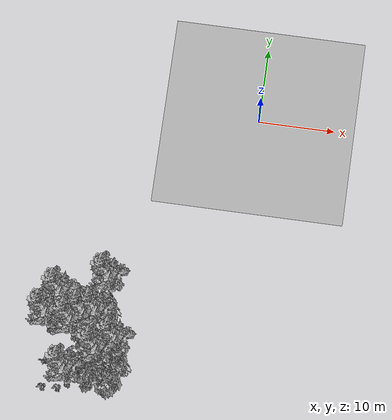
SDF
<sdf version="1.7">
 <world name="default">
  <model name="ground_plane">
   <static>1</static>
   <link name="link">
    <collision name="collision">
     <pose>-50 0 0 0 -0 0</pose>
     <geometry><plane><normal>0 0 1</normal><size>80 80</size></plane></geometry>
     <surface><contact><ode><min_depth>0.01</min_depth><max_vel>0</max_vel></ode></contact></surface>
    </collision>
    <visual name="grass">
     <cast_shadows>0</cast_shadows>
     <geometry>
      <mesh>
       <scale>0.46714285714285714 0.46714285714285714 0.1</scale>
       <uri>file://grass_plane/meshes/grass_plane.dae</uri>
      </mesh>
     </geometry>
    </visual>
   </link>
  </model>
  <model name="Tree 72">
   <static>1</static>
   <pose>-15.256766040645942 -37.49402422030816 0 1.57079 -0 0</pose>
   <link name="link">
    <collision name="collision">
     <geometry><mesh><scale>3.5 5 3.5</scale><uri>model://tree_2/meshes/tree_2.obj</uri></mesh></geometry>
    </collision>
    <visual name="visual">
     <geometry><mesh><scale>3.5 5 3.5</scale><uri>model://tree_2/meshes/tree_2.obj</uri></mesh></geometry>
    </visual>
   </link>
  </model>
  <model name="Tree 113">
   <static>1</static>
   <pose>-18.47589404758458 -31.145371653543627 0 1.57079 -0 0</pose>
   <link name="link">
    <collision name="collision">
     <geometry><mesh><scale>3.5 5 3.5</scale><uri>model://tree_9/meshes/tree_9.obj</uri></mesh></geometry>
    </collision>
    <visual name="visual">
     <geometry><mesh><scale>3.5 5 3.5</scale><uri>model://tree_9/meshes/tree_9.obj</uri></mesh></geometry>
    </visual>
   </link>
  </model>
  <model name="Tree 189">
   <static>1</static>
   <pose>-16.052205030088007 -35.75439649381331 0 1.57079 -0 0</pose>
   <link name="link">
    <collision name="collision">
     <geometry><mesh><scale>3.5 5 3.5</scale><uri>model://tree_2/meshes/tree_2.obj</uri></mesh></geometry>
    </collision>
    <visual name="visual">
     <geometry><mesh><scale>3.5 5 3.5</scale><uri>model://tree_2/meshes/tree_2.obj</uri></mesh></geometry>
    </visual>
   </link>
  </model>
  <model name="Tree 197">
   <static>1</static>
   <pose>-17.569650772991114 -30.46245014160089 0 1.57079 -0 0</pose>
   <link name="link">
    <collision name="collision">
     <geometry><mesh><scale>3.5 5 3.5</scale><uri>model://tree_2/meshes/tree_2.obj</uri></mesh></geometry>
    </collision>
    <visual name="visual">
     <geometry><mesh><scale>3.5 5 3.5</scale><uri>model://tree_2/meshes/tree_2.obj</uri></mesh></geometry>
    </visual>
   </link>
  </model>
  <model name="Tree 240">
   <static>1</static>
   <pose>-19.893714847305038 -32.23101125742174 0 1.57079 -0 0</pose>
   <link name="link">
    <collision name="collision">
     <geometry><mesh><scale>3.5 5 3.5</scale><uri>model://tree_9/meshes/tree_9.obj</uri></mesh></geometry>
    </collision>
    <visual name="visual">
     <geometry><mesh><scale>3.5 5 3.5</scale><uri>model://tree_9/meshes/tree_9.obj</uri></mesh></geometry>
    </visual>
   </link>
  </model>
  <model name="Tree 287">
   <static>1</static>
   <pose>-21.746828851206114 -28.792043879974834 0 1.57079 -0 0</pose>
   <link name="link">
    <collision name="collision">
     <geometry><mesh><scale>3.5 5 3.5</scale><uri>model://tree_9/meshes/tree_9.obj</uri></mesh></geometry>
    </collision>
    <visual name="visual">
     <geometry><mesh><scale>3.5 5 3.5</scale><uri>model://tree_9/meshes/tree_9.obj</uri></mesh></geometry>
    </visual>
   </link>
  </model>
  <model name="Tree 392">
   <static>1</static>
   <pose>-16.978302216751793 -30.6695301493221 0 1.57079 -0 0</pose>
   <link name="link">
    <collision name="collision">
     <geometry><mesh><scale>3.5 5 3.5</scale><uri>model://tree_9/meshes/tree_9.obj</uri></mesh></geometry>
    </collision>
    <visual name="visual">
     <geometry><mesh><scale>3.5 5 3.5</scale><uri>model://tree_9/meshes/tree_9.obj</uri></mesh></geometry>
    </visual>
   </link>
  </model>
  <model name="Tree 393">
   <static>1</static>
   <pose>-23.08631787187317 -31.631196458114673 0 1.57079 -0 0</pose>
   <link name="link">
    <collision name="collision">
     <geometry><mesh><scale>3.5 5 3.5</scale><uri>model://tree_9/meshes/tree_9.obj</uri></mesh></geometry>
    </collision>
    <visual name="visual">
     <geometry><mesh><scale>3.5 5 3.5</scale><uri>model://tree_9/meshes/tree_9.obj</uri></mesh></geometry>
    </visual>
   </link>
  </model>
  <model name="Tree 446">
   <static>1</static>
   <pose>-16.000489778354417 -26.06021841008176 0 1.57079 -0 0</pose>
   <link name="link">
    <collision name="collision">
     <geometry><mesh><scale>3.5 5 3.5</scale><uri>model://tree_9/meshes/tree_9.obj</uri></mesh></geometry>
    </collision>
    <visual name="visual">
     <geometry><mesh><scale>3.5 5 3.5</scale><uri>model://tree_9/meshes/tree_9.obj</uri></mesh></geometry>
    </visual>
   </link>
  </model>
  <model name="Tree 476">
   <static>1</static>
   <pose>-16.2519723860224 -35.47369083583853 0 1.57079 -0 0</pose>
   <link name="link">
    <collision name="collision">
     <geometry><mesh><scale>3.5 5 3.5</scale><uri>model://tree_9/meshes/tree_9.obj</uri></mesh></geometry>
    </collision>
    <visual name="visual">
     <geometry><mesh><scale>3.5 5 3.5</scale><uri>model://tree_9/meshes/tree_9.obj</uri></mesh></geometry>
    </visual>
   </link>
  </model>
  <model name="Tree 541">
   <static>1</static>
   <pose>-14.110211380558084 -33.93282423010593 0 1.57079 -0 0</pose>
   <link name="link">
    <collision name="collision">
     <geometry><mesh><scale>3.5 5 3.5</scale><uri>model://tree_9/meshes/tree_9.obj</uri></mesh></geometry>
    </collision>
    <visual name="visual">
     <geometry><mesh><scale>3.5 5 3.5</scale><uri>model://tree_9/meshes/tree_9.obj</uri></mesh></geometry>
    </visual>
   </link>
  </model>
  <model name="Tree 612">
   <static>1</static>
   <pose>-19.819670284835265 -38.42120387171889 0 1.57079 -0 0</pose>
   <link name="link">
    <collision name="collision">
     <geometry><mesh><scale>3.5 5 3.5</scale><uri>model://tree_9/meshes/tree_9.obj</uri></mesh></geometry>
    </collision>
    <visual name="visual">
     <geometry><mesh><scale>3.5 5 3.5</scale><uri>model://tree_9/meshes/tree_9.obj</uri></mesh></geometry>
    </visual>
   </link>
  </model>
  <model name="Bush 1">
   <static>1</static>
   <pose>-21.54564204668805 -30.551152123268785 0 1.57079 -0 0</pose>
   <link name="link">
    <collision name="collision">
     <geometry><mesh><scale>2 2 2</scale><uri>model://bush_4/meshes/bush_4.obj</uri></mesh></geometry>
     <surface><contact><collide_without_contact>false</collide_without_contact></contact></surface>
    </collision>
    <visual name="visual">
     <geometry><mesh><scale>2 2 2</scale><uri>model://bush_4/meshes/bush_4.obj</uri></mesh></geometry>
    </visual>
   </link>
  </model>
  <model name="Bush 87">
   <static>1</static>
   <pose>-23.05343499007868 -39.10950316838029 0 1.57079 -0 0</pose>
   <link name="link">
    <collision name="collision">
     <geometry><mesh><scale>2 2 2</scale><uri>model://bush_2/meshes/bush_2.obj</uri></mesh></geometry>
     <surface><contact><collide_without_contact>false</collide_without_contact></contact></surface>
    </collision>
    <visual name="visual">
     <geometry><mesh><scale>2 2 2</scale><uri>model://bush_2/meshes/bush_2.obj</uri></mesh></geometry>
    </visual>
   </link>
  </model>
  <model name="Bush 129">
   <static>1</static>
   <pose>-17.825280127867817 -37.40029251600959 0 1.57079 -0 0</pose>
   <link name="link">
    <collision name="collision">
     <geometry><mesh><scale>2 2 2</scale><uri>model://bush_2/meshes/bush_2.obj</uri></mesh></geometry>
     <surface><contact><collide_without_contact>false</collide_without_contact></contact></surface>
    </collision>
    <visual name="visual">
     <geometry><mesh><scale>2 2 2</scale><uri>model://bush_2/meshes/bush_2.obj</uri></mesh></geometry>
    </visual>
   </link>
  </model>
  <model name="Bush 193">
   <static>1</static>
   <pose>-21.08378113381331 -39.01506812511628 0 1.57079 -0 0</pose>
   <link name="link">
    <collision name="collision">
     <geometry><mesh><scale>2 2 2</scale><uri>model://bush_2/meshes/bush_2.obj</uri></mesh></geometry>
     <surface><contact><collide_without_contact>false</collide_without_contact></contact></surface>
    </collision>
    <visual name="visual">
     <geometry><mesh><scale>2 2 2</scale><uri>model://bush_2/meshes/bush_2.obj</uri></mesh></geometry>
    </visual>
   </link>
  </model>
  <model name="Bush 241">
   <static>1</static>
   <pose>-23.10502120476275 -35.92835520776316 0 1.57079 -0 0</pose>
   <link name="link">
    <collision name="collision">
     <geometry><mesh><scale>2 2 2</scale><uri>model://bush_4/meshes/bush_4.obj</uri></mesh></geometry>
     <surface><contact><collide_without_contact>false</collide_without_contact></contact></surface>
    </collision>
    <visual name="visual">
     <geometry><mesh><scale>2 2 2</scale><uri>model://bush_4/meshes/bush_4.obj</uri></mesh></geometry>
    </visual>
   </link>
  </model>
  <model name="Bush 263">
   <static>1</static>
   <pose>-22.413675439211122 -31.582372641857237 0 1.57079 -0 0</pose>
   <link name="link">
    <collision name="collision">
     <geometry><mesh><scale>2 2 2</scale><uri>model://bush_1/meshes/bush_1.obj</uri></mesh></geometry>
     <surface><contact><collide_without_contact>false</collide_without_contact></contact></surface>
    </collision>
    <visual name="visual">
     <geometry><mesh><scale>2 2 2</scale><uri>model://bush_1/meshes/bush_1.obj</uri></mesh></geometry>
    </visual>
   </link>
  </model>
  <model name="Bush 301">
   <static>1</static>
   <pose>-24.420184467201608 -26.76220753501604 0 1.57079 -0 0</pose>
   <link name="link">
    <collision name="collision">
     <geometry><mesh><scale>2 2 2</scale><uri>model://bush_0/meshes/bush_0.obj</uri></mesh></geometry>
     <surface><contact><collide_without_contact>false</collide_without_contact></contact></surface>
    </collision>
    <visual name="visual">
     <geometry><mesh><scale>2 2 2</scale><uri>model://bush_0/meshes/bush_0.obj</uri></mesh></geometry>
    </visual>
   </link>
  </model>
  <model name="Bush 381">
   <static>1</static>
   <pose>-23.22055929584566 -29.20601470730918 0 1.57079 -0 0</pose>
   <link name="link">
    <collision name="collision">
     <geometry><mesh><scale>2 2 2</scale><uri>model://bush_1/meshes/bush_1.obj</uri></mesh></geometry>
     <surface><contact><collide_without_contact>false</collide_without_contact></contact></surface>
    </collision>
    <visual name="visual">
     <geometry><mesh><scale>2 2 2</scale><uri>model://bush_1/meshes/bush_1.obj</uri></mesh></geometry>
    </visual>
   </link>
  </model>
  <model name="Bush 462">
   <static>1</static>
   <pose>-15.445510449712497 -32.020651703009605 0 1.57079 -0 0</pose>
   <link name="link">
    <collision name="collision">
     <geometry><mesh><scale>2 2 2</scale><uri>model://bush_2/meshes/bush_2.obj</uri></mesh></geometry>
     <surface><contact><collide_without_contact>false</collide_without_contact></contact></surface>
    </collision>
    <visual name="visual">
     <geometry><mesh><scale>2 2 2</scale><uri>model://bush_2/meshes/bush_2.obj</uri></mesh></geometry>
    </visual>
   </link>
  </model>
  <model name="Bush 492">
   <static>1</static>
   <pose>-15.479308622493235 -29.000563426133965 0 1.57079 -0 0</pose>
   <link name="link">
    <collision name="collision">
     <geometry><mesh><scale>2 2 2</scale><uri>model://bush_0/meshes/bush_0.obj</uri></mesh></geometry>
     <surface><contact><collide_without_contact>false</collide_without_contact></contact></surface>
    </collision>
    <visual name="visual">
     <geometry><mesh><scale>2 2 2</scale><uri>model://bush_0/meshes/bush_0.obj</uri></mesh></geometry>
    </visual>
   </link>
  </model>
  <model name="Bush 554">
   <static>1</static>
   <pose>-19.990499907872678 -34.97077937673657 0 1.57079 -0 0</pose>
   <link name="link">
    <collision name="collision">
     <geometry><mesh><scale>2 2 2</scale><uri>model://bush_2/meshes/bush_2.obj</uri></mesh></geometry>
     <surface><contact><collide_without_contact>false</collide_without_contact></contact></surface>
    </collision>
    <visual name="visual">
     <geometry><mesh><scale>2 2 2</scale><uri>model://bush_2/meshes/bush_2.obj</uri></mesh></geometry>
    </visual>
   </link>
  </model>
 </world>
</sdf>
